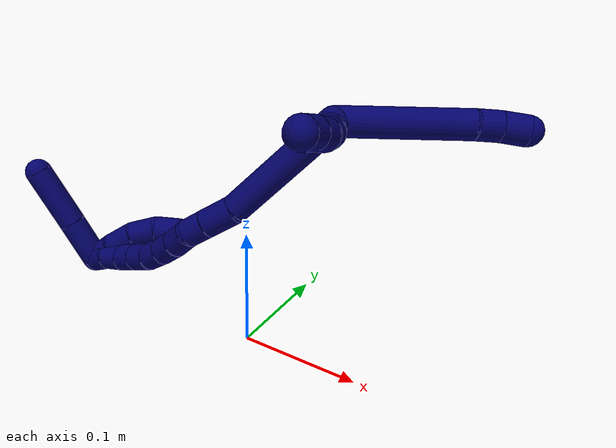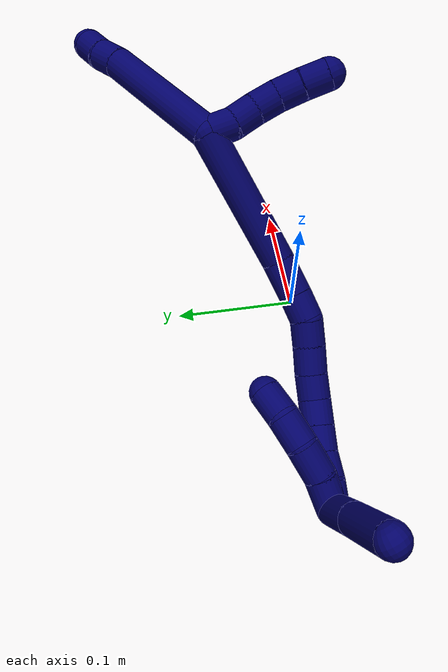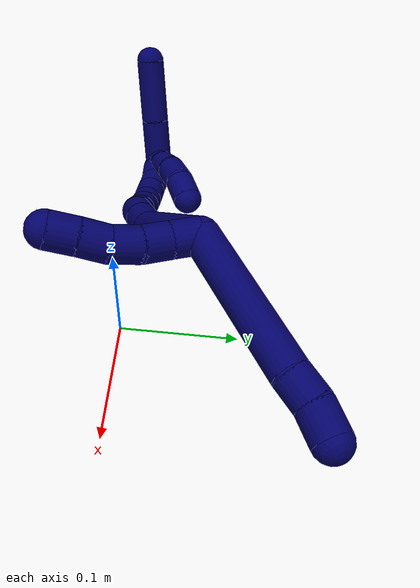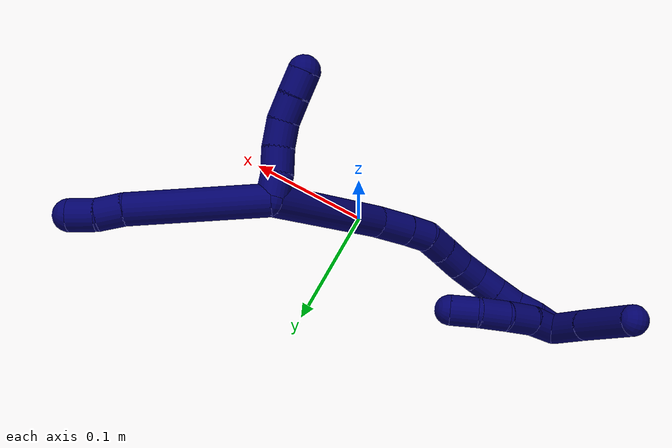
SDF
<sdf version="1.7">
 <world name="default">
  <model name="7">
   <static>0</static>
   <link name="7">
    <collision name="collision-cylinder-e_1_2_8">
     <pose>0.017306 0.017744 0.048092 -0.353453 0.325587 -0.058649</pose>
     <geometry><cylinder><radius>0.0125</radius><length>0.108207</length></cylinder></geometry>
     <surface>
      <friction><ode><mu>1.16</mu><mu2>1.16</mu2><slip1>0</slip1><slip2>0</slip2></ode></friction>
      <contact><ode><kp>1e+06</kp><kd>1</kd><max_vel>0</max_vel><min_depth>0.001</min_depth></ode></contact>
     </surface>
    </collision>
    <visual name="visual-cylinder-e_1_2_8">
     <pose>0.017306 0.017744 0.048092 -0.353453 0.325587 -0.058649</pose>
     <geometry><cylinder><radius>0.0125</radius><length>0.108207</length></cylinder></geometry>
     <material><ambient>0.003922 0 0.403922 1</ambient></material>
    </visual>
    <collision name="collision-cylinder-e_2_8_9">
     <pose>0.037888 0.04015 0.104617 -0.505116 0.327766 -0.0853</pose>
     <geometry><cylinder><radius>0.0125</radius><length>0.020355</length></cylinder></geometry>
     <surface>
      <friction><ode><mu>1.16</mu><mu2>1.16</mu2><slip1>0</slip1><slip2>0</slip2></ode></friction>
      <contact><ode><kp>1e+06</kp><kd>1</kd><max_vel>0</max_vel><min_depth>0.001</min_depth></ode></contact>
     </surface>
    </collision>
    <visual name="visual-cylinder-e_2_8_9">
     <pose>0.037888 0.04015 0.104617 -0.505116 0.327766 -0.0853</pose>
     <geometry><cylinder><radius>0.0125</radius><length>0.020355</length></cylinder></geometry>
     <material><ambient>0.003922 0 0.403922 1</ambient></material>
    </visual>
    <collision name="collision-cylinder-e_3_9_6">
     <pose>0.046042 0.048028 0.122036 -0.34356 0.472431 -0.083473</pose>
     <geometry><cylinder><radius>0.0125</radius><length>0.021438</length></cylinder></geometry>
     <surface>
      <friction><ode><mu>1.16</mu><mu2>1.16</mu2><slip1>0</slip1><slip2>0</slip2></ode></friction>
      <contact><ode><kp>1e+06</kp><kd>1</kd><max_vel>0</max_vel><min_depth>0.001</min_depth></ode></contact>
     </surface>
    </collision>
    <visual name="visual-cylinder-e_3_9_6">
     <pose>0.046042 0.048028 0.122036 -0.34356 0.472431 -0.083473</pose>
     <geometry><cylinder><radius>0.0125</radius><length>0.021438</length></cylinder></geometry>
     <material><ambient>0.003922 0 0.403922 1</ambient></material>
    </visual>
    <collision name="collision-cylinder-e_1_2_10">
     <pose>0.004202 -0.009029 -0.000905 1.67068 0.433667 0.477661</pose>
     <geometry><cylinder><radius>0.0125</radius><length>0.02</length></cylinder></geometry>
     <surface>
      <friction><ode><mu>1.16</mu><mu2>1.16</mu2><slip1>0</slip1><slip2>0</slip2></ode></friction>
      <contact><ode><kp>1e+06</kp><kd>1</kd><max_vel>0</max_vel><min_depth>0.001</min_depth></ode></contact>
     </surface>
    </collision>
    <visual name="visual-cylinder-e_1_2_10">
     <pose>0.004202 -0.009029 -0.000905 1.67068 0.433667 0.477661</pose>
     <geometry><cylinder><radius>0.0125</radius><length>0.02</length></cylinder></geometry>
     <material><ambient>0.003922 0 0.403922 1</ambient></material>
    </visual>
    <collision name="collision-cylinder-e_2_10_11">
     <pose>0.011705 -0.027427 -0.000655 1.44816 0.336397 0.29809</pose>
     <geometry><cylinder><radius>0.0125</radius><length>0.02</length></cylinder></geometry>
     <surface>
      <friction><ode><mu>1.16</mu><mu2>1.16</mu2><slip1>0</slip1><slip2>0</slip2></ode></friction>
      <contact><ode><kp>1e+06</kp><kd>1</kd><max_vel>0</max_vel><min_depth>0.001</min_depth></ode></contact>
     </surface>
    </collision>
    <visual name="visual-cylinder-e_2_10_11">
     <pose>0.011705 -0.027427 -0.000655 1.44816 0.336397 0.29809</pose>
     <geometry><cylinder><radius>0.0125</radius><length>0.02</length></cylinder></geometry>
     <material><ambient>0.003922 0 0.403922 1</ambient></material>
    </visual>
    <collision name="collision-cylinder-e_3_11_12">
     <pose>0.017064 -0.046581 0.000623 1.55817 0.207258 0.204675</pose>
     <geometry><cylinder><radius>0.0125</radius><length>0.02</length></cylinder></geometry>
     <surface>
      <friction><ode><mu>1.16</mu><mu2>1.16</mu2><slip1>0</slip1><slip2>0</slip2></ode></friction>
      <contact><ode><kp>1e+06</kp><kd>1</kd><max_vel>0</max_vel><min_depth>0.001</min_depth></ode></contact>
     </surface>
    </collision>
    <visual name="visual-cylinder-e_3_11_12">
     <pose>0.017064 -0.046581 0.000623 1.55817 0.207258 0.204675</pose>
     <geometry><cylinder><radius>0.0125</radius><length>0.02</length></cylinder></geometry>
     <material><ambient>0.003922 0 0.403922 1</ambient></material>
    </visual>
    <collision name="collision-cylinder-e_4_12_13">
     <pose>0.019325 -0.06627 -0.00062 1.70794 0.020349 0.02335</pose>
     <geometry><cylinder><radius>0.0125</radius><length>0.02</length></cylinder></geometry>
     <surface>
      <friction><ode><mu>1.16</mu><mu2>1.16</mu2><slip1>0</slip1><slip2>0</slip2></ode></friction>
      <contact><ode><kp>1e+06</kp><kd>1</kd><max_vel>0</max_vel><min_depth>0.001</min_depth></ode></contact>
     </surface>
    </collision>
    <visual name="visual-cylinder-e_4_12_13">
     <pose>0.019325 -0.06627 -0.00062 1.70794 0.020349 0.02335</pose>
     <geometry><cylinder><radius>0.0125</radius><length>0.02</length></cylinder></geometry>
     <material><ambient>0.003922 0 0.403922 1</ambient></material>
    </visual>
    <collision name="collision-cylinder-e_5_13_5">
     <pose>0.020263 -0.085997 -0.003708 1.74429 0.073514 0.087501</pose>
     <geometry><cylinder><radius>0.0125</radius><length>0.02</length></cylinder></geometry>
     <surface>
      <friction><ode><mu>1.16</mu><mu2>1.16</mu2><slip1>0</slip1><slip2>0</slip2></ode></friction>
      <contact><ode><kp>1e+06</kp><kd>1</kd><max_vel>0</max_vel><min_depth>0.001</min_depth></ode></contact>
     </surface>
    </collision>
    <visual name="visual-cylinder-e_5_13_5">
     <pose>0.020263 -0.085997 -0.003708 1.74429 0.073514 0.087501</pose>
     <geometry><cylinder><radius>0.0125</radius><length>0.02</length></cylinder></geometry>
     <material><ambient>0.003922 0 0.403922 1</ambient></material>
    </visual>
    <collision name="collision-cylinder-e_1_2_14">
     <pose>0.018521 0.002948 -0.05095 -3.0838 0.348125 -2.81576</pose>
     <geometry><cylinder><radius>0.0125</radius><length>0.108584</length></cylinder></geometry>
     <surface>
      <friction><ode><mu>1.16</mu><mu2>1.16</mu2><slip1>0</slip1><slip2>0</slip2></ode></friction>
      <contact><ode><kp>1e+06</kp><kd>1</kd><max_vel>0</max_vel><min_depth>0.001</min_depth></ode></contact>
     </surface>
    </collision>
    <visual name="visual-cylinder-e_1_2_14">
     <pose>0.018521 0.002948 -0.05095 -3.0838 0.348125 -2.81576</pose>
     <geometry><cylinder><radius>0.0125</radius><length>0.108584</length></cylinder></geometry>
     <material><ambient>0.003922 0 0.403922 1</ambient></material>
    </visual>
    <collision name="collision-cylinder-e_2_14_15">
     <pose>0.038519 0.006959 -0.116218 -3.06746 0.10251 -1.88976</pose>
     <geometry><cylinder><radius>0.0125</radius><length>0.028866</length></cylinder></geometry>
     <surface>
      <friction><ode><mu>1.16</mu><mu2>1.16</mu2><slip1>0</slip1><slip2>0</slip2></ode></friction>
      <contact><ode><kp>1e+06</kp><kd>1</kd><max_vel>0</max_vel><min_depth>0.001</min_depth></ode></contact>
     </surface>
    </collision>
    <visual name="visual-cylinder-e_2_14_15">
     <pose>0.038519 0.006959 -0.116218 -3.06746 0.10251 -1.88976</pose>
     <geometry><cylinder><radius>0.0125</radius><length>0.028866</length></cylinder></geometry>
     <material><ambient>0.003922 0 0.403922 1</ambient></material>
    </visual>
    <collision name="collision-cylinder-e_3_15_16">
     <pose>0.041025 0.009153 -0.14067 -3.03044 0.10061 -1.47111</pose>
     <geometry><cylinder><radius>0.0125</radius><length>0.020499</length></cylinder></geometry>
     <surface>
      <friction><ode><mu>1.16</mu><mu2>1.16</mu2><slip1>0</slip1><slip2>0</slip2></ode></friction>
      <contact><ode><kp>1e+06</kp><kd>1</kd><max_vel>0</max_vel><min_depth>0.001</min_depth></ode></contact>
     </surface>
    </collision>
    <visual name="visual-cylinder-e_3_15_16">
     <pose>0.041025 0.009153 -0.14067 -3.03044 0.10061 -1.47111</pose>
     <geometry><cylinder><radius>0.0125</radius><length>0.020499</length></cylinder></geometry>
     <material><ambient>0.003922 0 0.403922 1</ambient></material>
    </visual>
    <collision name="collision-cylinder-e_4_16_17">
     <pose>0.043766 0.014608 -0.159878 -2.69694 0.168668 -0.71569</pose>
     <geometry><cylinder><radius>0.0125</radius><length>0.02039</length></cylinder></geometry>
     <surface>
      <friction><ode><mu>1.16</mu><mu2>1.16</mu2><slip1>0</slip1><slip2>0</slip2></ode></friction>
      <contact><ode><kp>1e+06</kp><kd>1</kd><max_vel>0</max_vel><min_depth>0.001</min_depth></ode></contact>
     </surface>
    </collision>
    <visual name="visual-cylinder-e_4_16_17">
     <pose>0.043766 0.014608 -0.159878 -2.69694 0.168668 -0.71569</pose>
     <geometry><cylinder><radius>0.0125</radius><length>0.02039</length></cylinder></geometry>
     <material><ambient>0.003922 0 0.403922 1</ambient></material>
    </visual>
    <collision name="collision-cylinder-e_5_17_18">
     <pose>0.046141 0.023777 -0.178589 -2.67566 0.06141 -0.257465</pose>
     <geometry><cylinder><radius>0.0125</radius><length>0.021617</length></cylinder></geometry>
     <surface>
      <friction><ode><mu>1.16</mu><mu2>1.16</mu2><slip1>0</slip1><slip2>0</slip2></ode></friction>
      <contact><ode><kp>1e+06</kp><kd>1</kd><max_vel>0</max_vel><min_depth>0.001</min_depth></ode></contact>
     </surface>
    </collision>
    <visual name="visual-cylinder-e_5_17_18">
     <pose>0.046141 0.023777 -0.178589 -2.67566 0.06141 -0.257465</pose>
     <geometry><cylinder><radius>0.0125</radius><length>0.021617</length></cylinder></geometry>
     <material><ambient>0.003922 0 0.403922 1</ambient></material>
    </visual>
    <collision name="collision-cylinder-e_6_18_19">
     <pose>0.046762 0.032531 -0.197449 -2.74085 -0.00421 0.020726</pose>
     <geometry><cylinder><radius>0.0125</radius><length>0.02003</length></cylinder></geometry>
     <surface>
      <friction><ode><mu>1.16</mu><mu2>1.16</mu2><slip1>0</slip1><slip2>0</slip2></ode></friction>
      <contact><ode><kp>1e+06</kp><kd>1</kd><max_vel>0</max_vel><min_depth>0.001</min_depth></ode></contact>
     </surface>
    </collision>
    <visual name="visual-cylinder-e_6_18_19">
     <pose>0.046762 0.032531 -0.197449 -2.74085 -0.00421 0.020726</pose>
     <geometry><cylinder><radius>0.0125</radius><length>0.02003</length></cylinder></geometry>
     <material><ambient>0.003922 0 0.403922 1</ambient></material>
    </visual>
    <collision name="collision-cylinder-e_7_19_20">
     <pose>0.044381 0.040042 -0.215707 -2.76204 -0.235907 1.10554</pose>
     <geometry><cylinder><radius>0.0125</radius><length>0.020012</length></cylinder></geometry>
     <surface>
      <friction><ode><mu>1.16</mu><mu2>1.16</mu2><slip1>0</slip1><slip2>0</slip2></ode></friction>
      <contact><ode><kp>1e+06</kp><kd>1</kd><max_vel>0</max_vel><min_depth>0.001</min_depth></ode></contact>
     </surface>
    </collision>
    <visual name="visual-cylinder-e_7_19_20">
     <pose>0.044381 0.040042 -0.215707 -2.76204 -0.235907 1.10554</pose>
     <geometry><cylinder><radius>0.0125</radius><length>0.020012</length></cylinder></geometry>
     <material><ambient>0.003922 0 0.403922 1</ambient></material>
    </visual>
    <collision name="collision-cylinder-e_8_20_21">
     <pose>0.039519 0.047213 -0.233739 -2.76416 -0.255087 1.1826</pose>
     <geometry><cylinder><radius>0.0125</radius><length>0.020002</length></cylinder></geometry>
     <surface>
      <friction><ode><mu>1.16</mu><mu2>1.16</mu2><slip1>0</slip1><slip2>0</slip2></ode></friction>
      <contact><ode><kp>1e+06</kp><kd>1</kd><max_vel>0</max_vel><min_depth>0.001</min_depth></ode></contact>
     </surface>
    </collision>
    <visual name="visual-cylinder-e_8_20_21">
     <pose>0.039519 0.047213 -0.233739 -2.76416 -0.255087 1.1826</pose>
     <geometry><cylinder><radius>0.0125</radius><length>0.020002</length></cylinder></geometry>
     <material><ambient>0.003922 0 0.403922 1</ambient></material>
    </visual>
    <collision name="collision-cylinder-e_9_21_22">
     <pose>0.033549 0.05298 -0.251861 -2.90503 -0.351851 1.96304</pose>
     <geometry><cylinder><radius>0.0125</radius><length>0.020001</length></cylinder></geometry>
     <surface>
      <friction><ode><mu>1.16</mu><mu2>1.16</mu2><slip1>0</slip1><slip2>0</slip2></ode></friction>
      <contact><ode><kp>1e+06</kp><kd>1</kd><max_vel>0</max_vel><min_depth>0.001</min_depth></ode></contact>
     </surface>
    </collision>
    <visual name="visual-cylinder-e_9_21_22">
     <pose>0.033549 0.05298 -0.251861 -2.90503 -0.351851 1.96304</pose>
     <geometry><cylinder><radius>0.0125</radius><length>0.020001</length></cylinder></geometry>
     <material><ambient>0.003922 0 0.403922 1</ambient></material>
    </visual>
    <collision name="collision-cylinder-e_10_22_1">
     <pose>0.028465 0.058591 -0.270244 -2.78854 -0.164468 0.865632</pose>
     <geometry><cylinder><radius>0.0125</radius><length>0.02</length></cylinder></geometry>
     <surface>
      <friction><ode><mu>1.16</mu><mu2>1.16</mu2><slip1>0</slip1><slip2>0</slip2></ode></friction>
      <contact><ode><kp>1e+06</kp><kd>1</kd><max_vel>0</max_vel><min_depth>0.001</min_depth></ode></contact>
     </surface>
    </collision>
    <visual name="visual-cylinder-e_10_22_1">
     <pose>0.028465 0.058591 -0.270244 -2.78854 -0.164468 0.865632</pose>
     <geometry><cylinder><radius>0.0125</radius><length>0.02</length></cylinder></geometry>
     <material><ambient>0.003922 0 0.403922 1</ambient></material>
    </visual>
    <collision name="collision-cylinder-e_1_1_23">
     <pose>0.007664 0.053587 -0.28124 1.77456 -1.14928 -1.34339</pose>
     <geometry><cylinder><radius>0.0125</radius><length>0.042005</length></cylinder></geometry>
     <surface>
      <friction><ode><mu>1.16</mu><mu2>1.16</mu2><slip1>0</slip1><slip2>0</slip2></ode></friction>
      <contact><ode><kp>1e+06</kp><kd>1</kd><max_vel>0</max_vel><min_depth>0.001</min_depth></ode></contact>
     </surface>
    </collision>
    <visual name="visual-cylinder-e_1_1_23">
     <pose>0.007664 0.053587 -0.28124 1.77456 -1.14928 -1.34339</pose>
     <geometry><cylinder><radius>0.0125</radius><length>0.042005</length></cylinder></geometry>
     <material><ambient>0.003922 0 0.403922 1</ambient></material>
    </visual>
    <collision name="collision-cylinder-e_2_23_4">
     <pose>-0.038009 0.03379 -0.285906 1.82252 -1.15352 -1.39618</pose>
     <geometry><cylinder><radius>0.0125</radius><length>0.057995</length></cylinder></geometry>
     <surface>
      <friction><ode><mu>1.16</mu><mu2>1.16</mu2><slip1>0</slip1><slip2>0</slip2></ode></friction>
      <contact><ode><kp>1e+06</kp><kd>1</kd><max_vel>0</max_vel><min_depth>0.001</min_depth></ode></contact>
     </surface>
    </collision>
    <visual name="visual-cylinder-e_2_23_4">
     <pose>-0.038009 0.03379 -0.285906 1.82252 -1.15352 -1.39618</pose>
     <geometry><cylinder><radius>0.0125</radius><length>0.057995</length></cylinder></geometry>
     <material><ambient>0.003922 0 0.403922 1</ambient></material>
    </visual>
    <collision name="collision-cylinder-e_1_1_24">
     <pose>0.024561 0.059646 -0.266682 0.181803 -0.172207 -0.015736</pose>
     <geometry><cylinder><radius>0.0125</radius><length>0.026458</length></cylinder></geometry>
     <surface>
      <friction><ode><mu>1.16</mu><mu2>1.16</mu2><slip1>0</slip1><slip2>0</slip2></ode></friction>
      <contact><ode><kp>1e+06</kp><kd>1</kd><max_vel>0</max_vel><min_depth>0.001</min_depth></ode></contact>
     </surface>
    </collision>
    <visual name="visual-cylinder-e_1_1_24">
     <pose>0.024561 0.059646 -0.266682 0.181803 -0.172207 -0.015736</pose>
     <geometry><cylinder><radius>0.0125</radius><length>0.026458</length></cylinder></geometry>
     <material><ambient>0.003922 0 0.403922 1</ambient></material>
    </visual>
    <collision name="collision-cylinder-e_2_24_25">
     <pose>0.020562 0.057203 -0.240996 0.006688 -0.133837 -0.000448</pose>
     <geometry><cylinder><radius>0.0125</radius><length>0.025968</length></cylinder></geometry>
     <surface>
      <friction><ode><mu>1.16</mu><mu2>1.16</mu2><slip1>0</slip1><slip2>0</slip2></ode></friction>
      <contact><ode><kp>1e+06</kp><kd>1</kd><max_vel>0</max_vel><min_depth>0.001</min_depth></ode></contact>
     </surface>
    </collision>
    <visual name="visual-cylinder-e_2_24_25">
     <pose>0.020562 0.057203 -0.240996 0.006688 -0.133837 -0.000448</pose>
     <geometry><cylinder><radius>0.0125</radius><length>0.025968</length></cylinder></geometry>
     <material><ambient>0.003922 0 0.403922 1</ambient></material>
    </visual>
    <collision name="collision-cylinder-e_3_25_26">
     <pose>0.02017 0.058072 -0.216007 -0.078656 0.109808 -0.004325</pose>
     <geometry><cylinder><radius>0.0125</radius><length>0.024466</length></cylinder></geometry>
     <surface>
      <friction><ode><mu>1.16</mu><mu2>1.16</mu2><slip1>0</slip1><slip2>0</slip2></ode></friction>
      <contact><ode><kp>1e+06</kp><kd>1</kd><max_vel>0</max_vel><min_depth>0.001</min_depth></ode></contact>
     </surface>
    </collision>
    <visual name="visual-cylinder-e_3_25_26">
     <pose>0.02017 0.058072 -0.216007 -0.078656 0.109808 -0.004325</pose>
     <geometry><cylinder><radius>0.0125</radius><length>0.024466</length></cylinder></geometry>
     <material><ambient>0.003922 0 0.403922 1</ambient></material>
    </visual>
    <collision name="collision-cylinder-e_4_26_3">
     <pose>0.026018 0.061264 -0.193484 -0.211729 0.400714 -0.043153</pose>
     <geometry><cylinder><radius>0.0125</radius><length>0.023108</length></cylinder></geometry>
     <surface>
      <friction><ode><mu>1.16</mu><mu2>1.16</mu2><slip1>0</slip1><slip2>0</slip2></ode></friction>
      <contact><ode><kp>1e+06</kp><kd>1</kd><max_vel>0</max_vel><min_depth>0.001</min_depth></ode></contact>
     </surface>
    </collision>
    <visual name="visual-cylinder-e_4_26_3">
     <pose>0.026018 0.061264 -0.193484 -0.211729 0.400714 -0.043153</pose>
     <geometry><cylinder><radius>0.0125</radius><length>0.023108</length></cylinder></geometry>
     <material><ambient>0.003922 0 0.403922 1</ambient></material>
    </visual>
    <collision name="collision-sphere-3">
     <pose>0.030525 0.063499 -0.183083 0 -0 0</pose>
     <geometry><sphere><radius>0.0125</radius></sphere></geometry>
     <surface>
      <friction><ode><mu>1.16</mu><mu2>1.16</mu2><slip1>0</slip1><slip2>0</slip2></ode></friction>
      <contact><ode><kp>1e+06</kp><kd>1</kd><max_vel>0</max_vel><min_depth>0.001</min_depth></ode></contact>
     </surface>
    </collision>
    <visual name="visual-sphere-3">
     <pose>0.030525 0.063499 -0.183083 0 -0 0</pose>
     <geometry><sphere><radius>0.0125</radius></sphere></geometry>
     <material><ambient>0.003922 0 0.403922 1</ambient></material>
    </visual>
    <collision name="collision-sphere-26">
     <pose>0.021511 0.059028 -0.203885 0 -0 0</pose>
     <geometry><sphere><radius>0.0125</radius></sphere></geometry>
     <surface>
      <friction><ode><mu>1.16</mu><mu2>1.16</mu2><slip1>0</slip1><slip2>0</slip2></ode></friction>
      <contact><ode><kp>1e+06</kp><kd>1</kd><max_vel>0</max_vel><min_depth>0.001</min_depth></ode></contact>
     </surface>
    </collision>
    <visual name="visual-sphere-26">
     <pose>0.021511 0.059028 -0.203885 0 -0 0</pose>
     <geometry><sphere><radius>0.0125</radius></sphere></geometry>
     <material><ambient>0.003922 0 0.403922 1</ambient></material>
    </visual>
    <collision name="collision-sphere-25">
     <pose>0.018829 0.057117 -0.228129 0 -0 0</pose>
     <geometry><sphere><radius>0.0125</radius></sphere></geometry>
     <surface>
      <friction><ode><mu>1.16</mu><mu2>1.16</mu2><slip1>0</slip1><slip2>0</slip2></ode></friction>
      <contact><ode><kp>1e+06</kp><kd>1</kd><max_vel>0</max_vel><min_depth>0.001</min_depth></ode></contact>
     </surface>
    </collision>
    <visual name="visual-sphere-25">
     <pose>0.018829 0.057117 -0.228129 0 -0 0</pose>
     <geometry><sphere><radius>0.0125</radius></sphere></geometry>
     <material><ambient>0.003922 0 0.403922 1</ambient></material>
    </visual>
    <collision name="collision-sphere-24">
     <pose>0.022294 0.057289 -0.253864 0 -0 0</pose>
     <geometry><sphere><radius>0.0125</radius></sphere></geometry>
     <surface>
      <friction><ode><mu>1.16</mu><mu2>1.16</mu2><slip1>0</slip1><slip2>0</slip2></ode></friction>
      <contact><ode><kp>1e+06</kp><kd>1</kd><max_vel>0</max_vel><min_depth>0.001</min_depth></ode></contact>
     </surface>
    </collision>
    <visual name="visual-sphere-24">
     <pose>0.022294 0.057289 -0.253864 0 -0 0</pose>
     <geometry><sphere><radius>0.0125</radius></sphere></geometry>
     <material><ambient>0.003922 0 0.403922 1</ambient></material>
    </visual>
    <collision name="collision-sphere-4">
     <pose>-0.064519 0.022408 -0.288833 0 -0 0</pose>
     <geometry><sphere><radius>0.0125</radius></sphere></geometry>
     <surface>
      <friction><ode><mu>1.16</mu><mu2>1.16</mu2><slip1>0</slip1><slip2>0</slip2></ode></friction>
      <contact><ode><kp>1e+06</kp><kd>1</kd><max_vel>0</max_vel><min_depth>0.001</min_depth></ode></contact>
     </surface>
    </collision>
    <visual name="visual-sphere-4">
     <pose>-0.064519 0.022408 -0.288833 0 -0 0</pose>
     <geometry><sphere><radius>0.0125</radius></sphere></geometry>
     <material><ambient>0.003922 0 0.403922 1</ambient></material>
    </visual>
    <collision name="collision-sphere-23">
     <pose>-0.0115 0.045171 -0.282978 0 -0 0</pose>
     <geometry><sphere><radius>0.0125</radius></sphere></geometry>
     <surface>
      <friction><ode><mu>1.16</mu><mu2>1.16</mu2><slip1>0</slip1><slip2>0</slip2></ode></friction>
      <contact><ode><kp>1e+06</kp><kd>1</kd><max_vel>0</max_vel><min_depth>0.001</min_depth></ode></contact>
     </surface>
    </collision>
    <visual name="visual-sphere-23">
     <pose>-0.0115 0.045171 -0.282978 0 -0 0</pose>
     <geometry><sphere><radius>0.0125</radius></sphere></geometry>
     <material><ambient>0.003922 0 0.403922 1</ambient></material>
    </visual>
    <collision name="collision-sphere-1">
     <pose>0.026828 0.062002 -0.279501 0 -0 0</pose>
     <geometry><sphere><radius>0.0125</radius></sphere></geometry>
     <surface>
      <friction><ode><mu>1.16</mu><mu2>1.16</mu2><slip1>0</slip1><slip2>0</slip2></ode></friction>
      <contact><ode><kp>1e+06</kp><kd>1</kd><max_vel>0</max_vel><min_depth>0.001</min_depth></ode></contact>
     </surface>
    </collision>
    <visual name="visual-sphere-1">
     <pose>0.026828 0.062002 -0.279501 0 -0 0</pose>
     <geometry><sphere><radius>0.0125</radius></sphere></geometry>
     <material><ambient>0.003922 0 0.403922 1</ambient></material>
    </visual>
    <collision name="collision-sphere-22">
     <pose>0.030103 0.05518 -0.260987 0 -0 0</pose>
     <geometry><sphere><radius>0.0125</radius></sphere></geometry>
     <surface>
      <friction><ode><mu>1.16</mu><mu2>1.16</mu2><slip1>0</slip1><slip2>0</slip2></ode></friction>
      <contact><ode><kp>1e+06</kp><kd>1</kd><max_vel>0</max_vel><min_depth>0.001</min_depth></ode></contact>
     </surface>
    </collision>
    <visual name="visual-sphere-22">
     <pose>0.030103 0.05518 -0.260987 0 -0 0</pose>
     <geometry><sphere><radius>0.0125</radius></sphere></geometry>
     <material><ambient>0.003922 0 0.403922 1</ambient></material>
    </visual>
    <collision name="collision-sphere-21">
     <pose>0.036996 0.05078 -0.242735 0 -0 0</pose>
     <geometry><sphere><radius>0.0125</radius></sphere></geometry>
     <surface>
      <friction><ode><mu>1.16</mu><mu2>1.16</mu2><slip1>0</slip1><slip2>0</slip2></ode></friction>
      <contact><ode><kp>1e+06</kp><kd>1</kd><max_vel>0</max_vel><min_depth>0.001</min_depth></ode></contact>
     </surface>
    </collision>
    <visual name="visual-sphere-21">
     <pose>0.036996 0.05078 -0.242735 0 -0 0</pose>
     <geometry><sphere><radius>0.0125</radius></sphere></geometry>
     <material><ambient>0.003922 0 0.403922 1</ambient></material>
    </visual>
    <collision name="collision-sphere-11">
     <pose>0.015006 -0.036795 0.0005 0 -0 0</pose>
     <geometry><sphere><radius>0.0125</radius></sphere></geometry>
     <surface>
      <friction><ode><mu>1.16</mu><mu2>1.16</mu2><slip1>0</slip1><slip2>0</slip2></ode></friction>
      <contact><ode><kp>1e+06</kp><kd>1</kd><max_vel>0</max_vel><min_depth>0.001</min_depth></ode></contact>
     </surface>
    </collision>
    <visual name="visual-sphere-11">
     <pose>0.015006 -0.036795 0.0005 0 -0 0</pose>
     <geometry><sphere><radius>0.0125</radius></sphere></geometry>
     <material><ambient>0.003922 0 0.403922 1</ambient></material>
    </visual>
    <collision name="collision-sphere-10">
     <pose>0.008404 -0.018058 -0.00181 0 -0 0</pose>
     <geometry><sphere><radius>0.0125</radius></sphere></geometry>
     <surface>
      <friction><ode><mu>1.16</mu><mu2>1.16</mu2><slip1>0</slip1><slip2>0</slip2></ode></friction>
      <contact><ode><kp>1e+06</kp><kd>1</kd><max_vel>0</max_vel><min_depth>0.001</min_depth></ode></contact>
     </surface>
    </collision>
    <visual name="visual-sphere-10">
     <pose>0.008404 -0.018058 -0.00181 0 -0 0</pose>
     <geometry><sphere><radius>0.0125</radius></sphere></geometry>
     <material><ambient>0.003922 0 0.403922 1</ambient></material>
    </visual>
    <collision name="collision-sphere-6">
     <pose>0.05092 0.051243 0.131023 0 -0 0</pose>
     <geometry><sphere><radius>0.0125</radius></sphere></geometry>
     <surface>
      <friction><ode><mu>1.16</mu><mu2>1.16</mu2><slip1>0</slip1><slip2>0</slip2></ode></friction>
      <contact><ode><kp>1e+06</kp><kd>1</kd><max_vel>0</max_vel><min_depth>0.001</min_depth></ode></contact>
     </surface>
    </collision>
    <visual name="visual-sphere-6">
     <pose>0.05092 0.051243 0.131023 0 -0 0</pose>
     <geometry><sphere><radius>0.0125</radius></sphere></geometry>
     <material><ambient>0.003922 0 0.403922 1</ambient></material>
    </visual>
    <collision name="collision-sphere-9">
     <pose>0.041165 0.044813 0.113049 0 -0 0</pose>
     <geometry><sphere><radius>0.0125</radius></sphere></geometry>
     <surface>
      <friction><ode><mu>1.16</mu><mu2>1.16</mu2><slip1>0</slip1><slip2>0</slip2></ode></friction>
      <contact><ode><kp>1e+06</kp><kd>1</kd><max_vel>0</max_vel><min_depth>0.001</min_depth></ode></contact>
     </surface>
    </collision>
    <visual name="visual-sphere-9">
     <pose>0.041165 0.044813 0.113049 0 -0 0</pose>
     <geometry><sphere><radius>0.0125</radius></sphere></geometry>
     <material><ambient>0.003922 0 0.403922 1</ambient></material>
    </visual>
    <collision name="collision-sphere-2">
     <geometry><sphere><radius>0.0125</radius></sphere></geometry>
     <surface>
      <friction><ode><mu>1.16</mu><mu2>1.16</mu2><slip1>0</slip1><slip2>0</slip2></ode></friction>
      <contact><ode><kp>1e+06</kp><kd>1</kd><max_vel>0</max_vel><min_depth>0.001</min_depth></ode></contact>
     </surface>
    </collision>
    <visual name="visual-sphere-2">
     <geometry><sphere><radius>0.0125</radius></sphere></geometry>
     <material><ambient>0.003922 0 0.403922 1</ambient></material>
    </visual>
    <collision name="collision-sphere-19">
     <pose>0.04672 0.036438 -0.20667 0 -0 0</pose>
     <geometry><sphere><radius>0.0125</radius></sphere></geometry>
     <surface>
      <friction><ode><mu>1.16</mu><mu2>1.16</mu2><slip1>0</slip1><slip2>0</slip2></ode></friction>
      <contact><ode><kp>1e+06</kp><kd>1</kd><max_vel>0</max_vel><min_depth>0.001</min_depth></ode></contact>
     </surface>
    </collision>
    <visual name="visual-sphere-19">
     <pose>0.04672 0.036438 -0.20667 0 -0 0</pose>
     <geometry><sphere><radius>0.0125</radius></sphere></geometry>
     <material><ambient>0.003922 0 0.403922 1</ambient></material>
    </visual>
    <collision name="collision-sphere-8">
     <pose>0.034612 0.035487 0.096185 0 -0 0</pose>
     <geometry><sphere><radius>0.0125</radius></sphere></geometry>
     <surface>
      <friction><ode><mu>1.16</mu><mu2>1.16</mu2><slip1>0</slip1><slip2>0</slip2></ode></friction>
      <contact><ode><kp>1e+06</kp><kd>1</kd><max_vel>0</max_vel><min_depth>0.001</min_depth></ode></contact>
     </surface>
    </collision>
    <visual name="visual-sphere-8">
     <pose>0.034612 0.035487 0.096185 0 -0 0</pose>
     <geometry><sphere><radius>0.0125</radius></sphere></geometry>
     <material><ambient>0.003922 0 0.403922 1</ambient></material>
    </visual>
    <collision name="collision-sphere-12">
     <pose>0.019121 -0.056366 0.000747 0 -0 0</pose>
     <geometry><sphere><radius>0.0125</radius></sphere></geometry>
     <surface>
      <friction><ode><mu>1.16</mu><mu2>1.16</mu2><slip1>0</slip1><slip2>0</slip2></ode></friction>
      <contact><ode><kp>1e+06</kp><kd>1</kd><max_vel>0</max_vel><min_depth>0.001</min_depth></ode></contact>
     </surface>
    </collision>
    <visual name="visual-sphere-12">
     <pose>0.019121 -0.056366 0.000747 0 -0 0</pose>
     <geometry><sphere><radius>0.0125</radius></sphere></geometry>
     <material><ambient>0.003922 0 0.403922 1</ambient></material>
    </visual>
    <collision name="collision-sphere-13">
     <pose>0.019528 -0.076174 -0.001987 0 -0 0</pose>
     <geometry><sphere><radius>0.0125</radius></sphere></geometry>
     <surface>
      <friction><ode><mu>1.16</mu><mu2>1.16</mu2><slip1>0</slip1><slip2>0</slip2></ode></friction>
      <contact><ode><kp>1e+06</kp><kd>1</kd><max_vel>0</max_vel><min_depth>0.001</min_depth></ode></contact>
     </surface>
    </collision>
    <visual name="visual-sphere-13">
     <pose>0.019528 -0.076174 -0.001987 0 -0 0</pose>
     <geometry><sphere><radius>0.0125</radius></sphere></geometry>
     <material><ambient>0.003922 0 0.403922 1</ambient></material>
    </visual>
    <collision name="collision-sphere-5">
     <pose>0.020997 -0.09582 -0.00543 0 -0 0</pose>
     <geometry><sphere><radius>0.0125</radius></sphere></geometry>
     <surface>
      <friction><ode><mu>1.16</mu><mu2>1.16</mu2><slip1>0</slip1><slip2>0</slip2></ode></friction>
      <contact><ode><kp>1e+06</kp><kd>1</kd><max_vel>0</max_vel><min_depth>0.001</min_depth></ode></contact>
     </surface>
    </collision>
    <visual name="visual-sphere-5">
     <pose>0.020997 -0.09582 -0.00543 0 -0 0</pose>
     <geometry><sphere><radius>0.0125</radius></sphere></geometry>
     <material><ambient>0.003922 0 0.403922 1</ambient></material>
    </visual>
    <collision name="collision-sphere-14">
     <pose>0.037042 0.005895 -0.1019 0 -0 0</pose>
     <geometry><sphere><radius>0.0125</radius></sphere></geometry>
     <surface>
      <friction><ode><mu>1.16</mu><mu2>1.16</mu2><slip1>0</slip1><slip2>0</slip2></ode></friction>
      <contact><ode><kp>1e+06</kp><kd>1</kd><max_vel>0</max_vel><min_depth>0.001</min_depth></ode></contact>
     </surface>
    </collision>
    <visual name="visual-sphere-14">
     <pose>0.037042 0.005895 -0.1019 0 -0 0</pose>
     <geometry><sphere><radius>0.0125</radius></sphere></geometry>
     <material><ambient>0.003922 0 0.403922 1</ambient></material>
    </visual>
    <collision name="collision-sphere-15">
     <pose>0.039996 0.008022 -0.130536 0 -0 0</pose>
     <geometry><sphere><radius>0.0125</radius></sphere></geometry>
     <surface>
      <friction><ode><mu>1.16</mu><mu2>1.16</mu2><slip1>0</slip1><slip2>0</slip2></ode></friction>
      <contact><ode><kp>1e+06</kp><kd>1</kd><max_vel>0</max_vel><min_depth>0.001</min_depth></ode></contact>
     </surface>
    </collision>
    <visual name="visual-sphere-15">
     <pose>0.039996 0.008022 -0.130536 0 -0 0</pose>
     <geometry><sphere><radius>0.0125</radius></sphere></geometry>
     <material><ambient>0.003922 0 0.403922 1</ambient></material>
    </visual>
    <collision name="collision-sphere-16">
     <pose>0.042055 0.010284 -0.150804 0 -0 0</pose>
     <geometry><sphere><radius>0.0125</radius></sphere></geometry>
     <surface>
      <friction><ode><mu>1.16</mu><mu2>1.16</mu2><slip1>0</slip1><slip2>0</slip2></ode></friction>
      <contact><ode><kp>1e+06</kp><kd>1</kd><max_vel>0</max_vel><min_depth>0.001</min_depth></ode></contact>
     </surface>
    </collision>
    <visual name="visual-sphere-16">
     <pose>0.042055 0.010284 -0.150804 0 -0 0</pose>
     <geometry><sphere><radius>0.0125</radius></sphere></geometry>
     <material><ambient>0.003922 0 0.403922 1</ambient></material>
    </visual>
    <collision name="collision-sphere-17">
     <pose>0.045478 0.018931 -0.168951 0 -0 0</pose>
     <geometry><sphere><radius>0.0125</radius></sphere></geometry>
     <surface>
      <friction><ode><mu>1.16</mu><mu2>1.16</mu2><slip1>0</slip1><slip2>0</slip2></ode></friction>
      <contact><ode><kp>1e+06</kp><kd>1</kd><max_vel>0</max_vel><min_depth>0.001</min_depth></ode></contact>
     </surface>
    </collision>
    <visual name="visual-sphere-17">
     <pose>0.045478 0.018931 -0.168951 0 -0 0</pose>
     <geometry><sphere><radius>0.0125</radius></sphere></geometry>
     <material><ambient>0.003922 0 0.403922 1</ambient></material>
    </visual>
    <collision name="collision-sphere-18">
     <pose>0.046804 0.028624 -0.188227 0 -0 0</pose>
     <geometry><sphere><radius>0.0125</radius></sphere></geometry>
     <surface>
      <friction><ode><mu>1.16</mu><mu2>1.16</mu2><slip1>0</slip1><slip2>0</slip2></ode></friction>
      <contact><ode><kp>1e+06</kp><kd>1</kd><max_vel>0</max_vel><min_depth>0.001</min_depth></ode></contact>
     </surface>
    </collision>
    <visual name="visual-sphere-18">
     <pose>0.046804 0.028624 -0.188227 0 -0 0</pose>
     <geometry><sphere><radius>0.0125</radius></sphere></geometry>
     <material><ambient>0.003922 0 0.403922 1</ambient></material>
    </visual>
    <collision name="collision-sphere-20">
     <pose>0.042043 0.043647 -0.224743 0 -0 0</pose>
     <geometry><sphere><radius>0.0125</radius></sphere></geometry>
     <surface>
      <friction><ode><mu>1.16</mu><mu2>1.16</mu2><slip1>0</slip1><slip2>0</slip2></ode></friction>
      <contact><ode><kp>1e+06</kp><kd>1</kd><max_vel>0</max_vel><min_depth>0.001</min_depth></ode></contact>
     </surface>
    </collision>
    <visual name="visual-sphere-20">
     <pose>0.042043 0.043647 -0.224743 0 -0 0</pose>
     <geometry><sphere><radius>0.0125</radius></sphere></geometry>
     <material><ambient>0.003922 0 0.403922 1</ambient></material>
    </visual>
    <inertial>
     <pose>0.02025 0.020427 -0.111867 0 -0 0</pose>
     <mass>0.75</mass>
     <inertia>
      <ixx>-1.8e-05</ixx>
      <ixy>0</ixy>
      <ixz>0</ixz>
      <iyy>0.000188</iyy>
      <iyz>0</iyz>
      <izz>-8.7e-05</izz>
     </inertia>
    </inertial>
   </link>
   <pose>0.035382 0.06822 0.179647 -0.79692 0.910771 -0.478601</pose>
  </model>
 </world>
</sdf>
